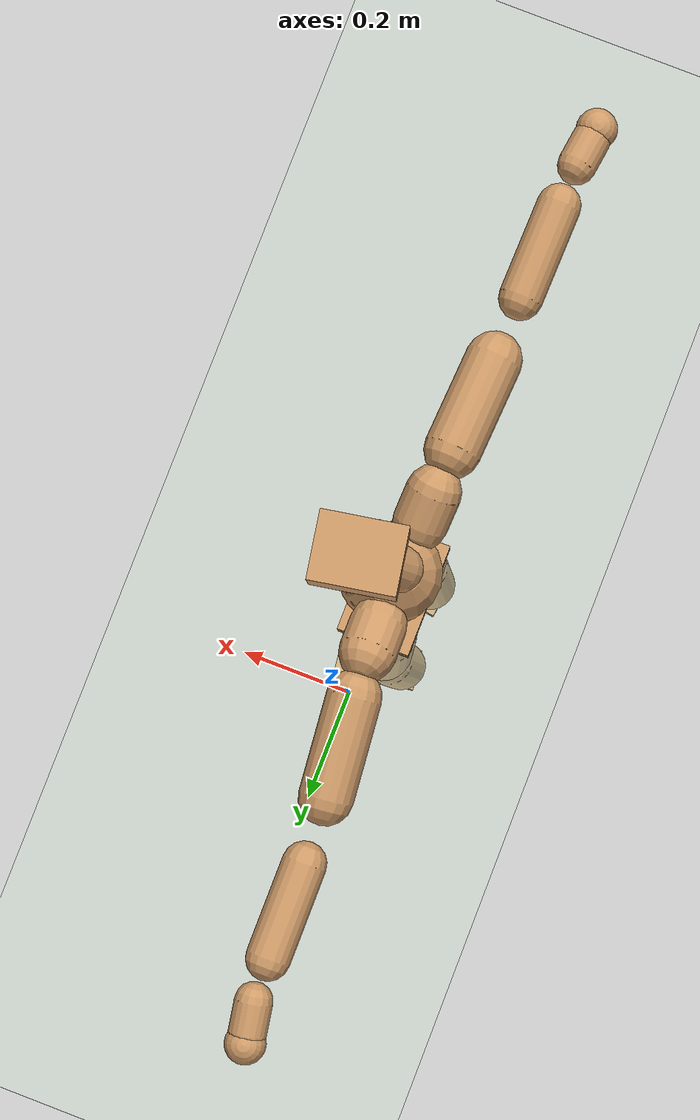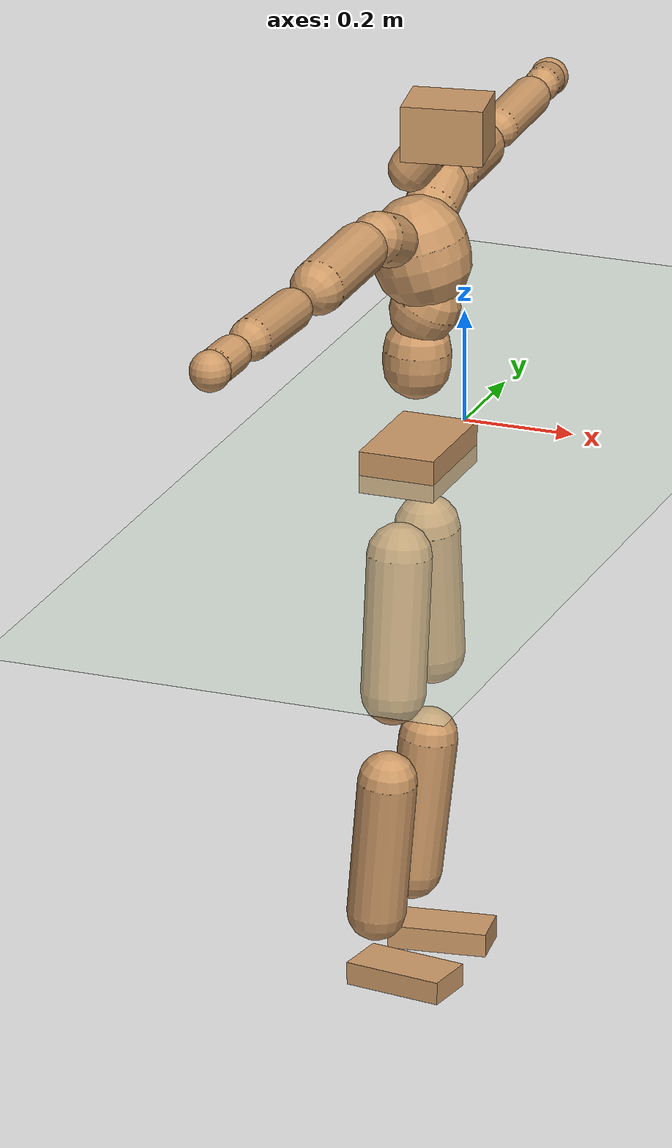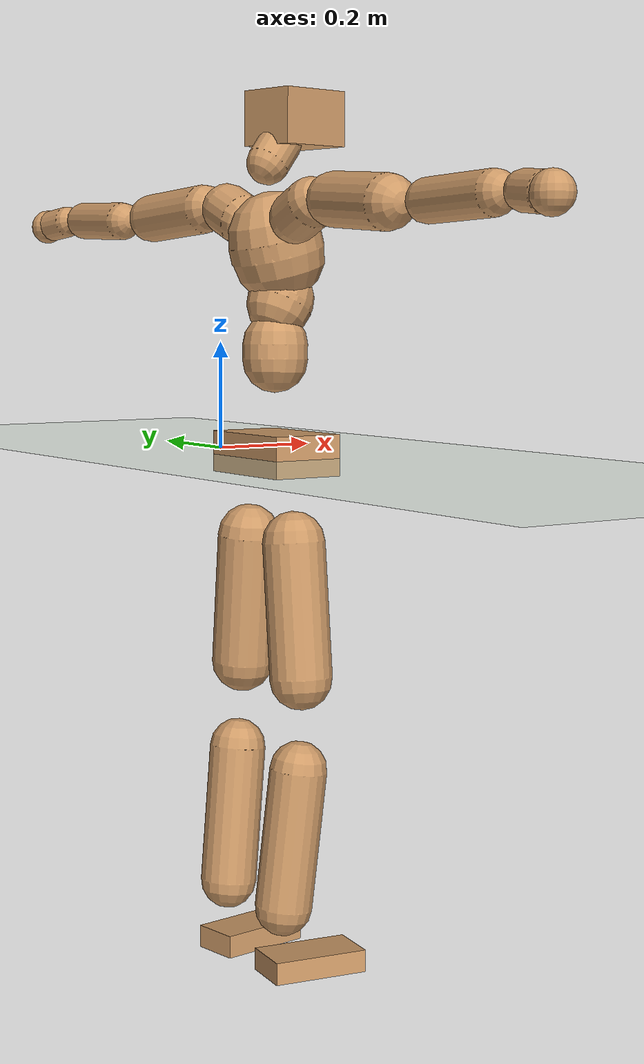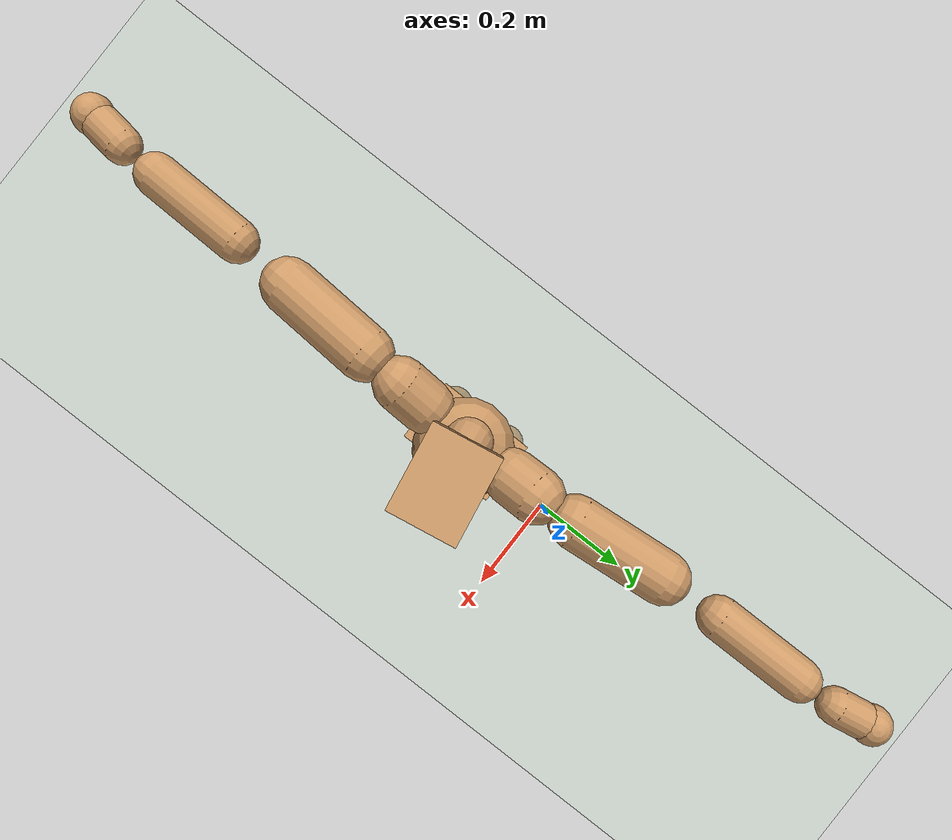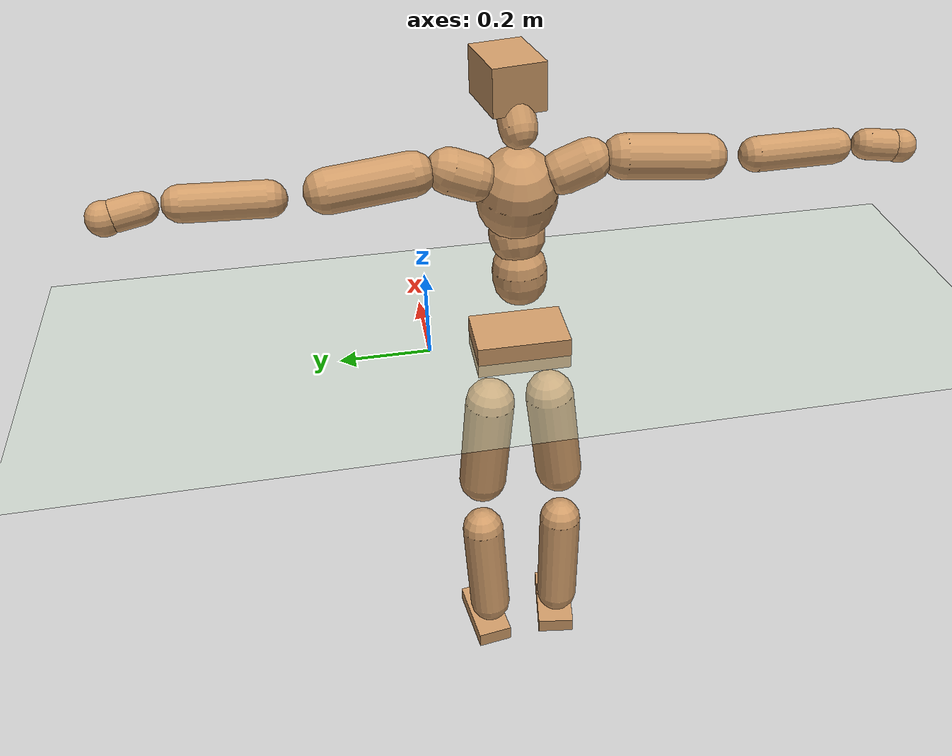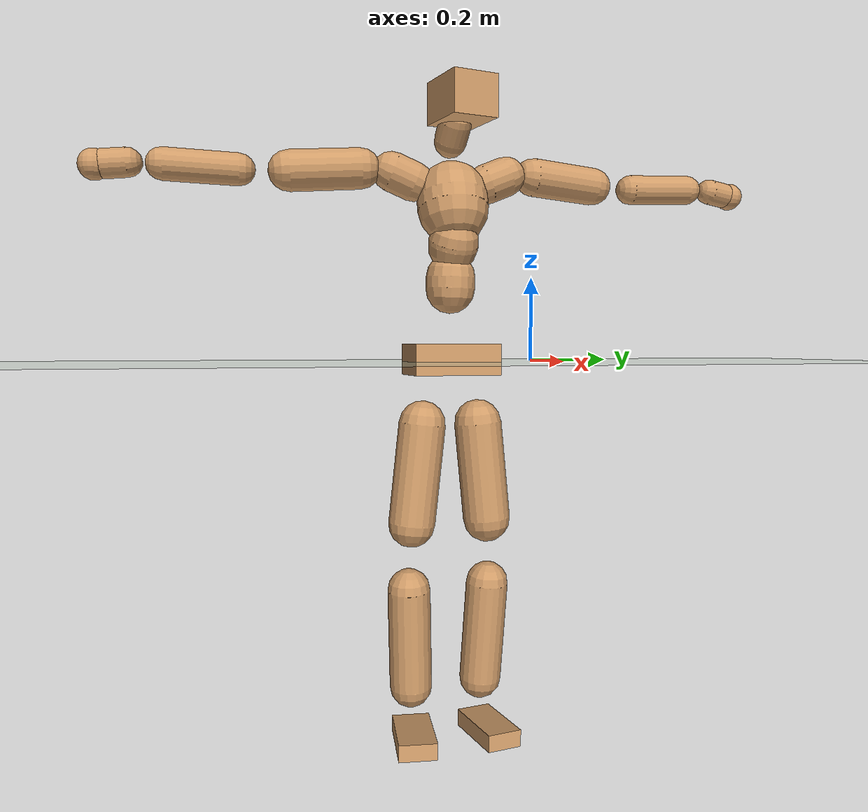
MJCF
<mujoco model="humanoid">
  <compiler coordinate="local" angle="radian"/>
  <default>
    <joint damping="0.0" armature="0.01" stiffness="0.0" limited="true"/>
    <geom conaffinity="1" condim="3" contype="7" margin="0.001" rgba="0.8 0.6 .4 1"/>
  </default>
  <asset>
    <texture type="skybox" builtin="gradient" rgb1=".4 .5 .6" rgb2="0 0 0" width="100" height="100"/>
    <texture builtin="flat" height="1278" mark="cross" markrgb="1 1 1" name="texgeom" random="0.01" rgb1="0.8 0.6 0.4" rgb2="0.8 0.6 0.4" type="cube" width="127"/>
    <texture builtin="checker" height="100" name="texplane" rgb1="0 0 0" rgb2="0.8 0.8 0.8" type="2d" width="100"/>
    <material name="MatPlane" reflectance="0.5" shininess="1" specular="1" texrepeat="60 60" texture="texplane"/>
    <material name="geom" texture="texgeom" texuniform="true"/>
  </asset>
  <worldbody>
    <light cutoff="100" diffuse="1 1 1" dir="-0 0 -1.3" directional="true" exponent="1" pos="0 0 1.3" specular=".1 .1 .1"/>
    <geom conaffinity="1" condim="3" name="floor" pos="0 0 0" rgba="0.8 0.9 0.8 1" size="100 100 .2" type="plane" material="MatPlane"/>
    <body name="Pelvis" pos="-0.0012 -0.2028 0.0159">
      <freejoint name="Pelvis"/>
      <geom type="box" contype="1" conaffinity="1" density="500" pos="-0.0072 0.0000 -0.0124" size="0.0679 0.1052 0.0374" quat="1.0000 0.0000 0.0000 -0.0010" name="Pelvis"/>
      <body name="L_Hip" pos="-0.0186 0.0645 -0.0892">
        <joint name="L_Hip_x" type="hinge" pos="0 0 0" axis="1 0 0" stiffness="800" damping="80" armature="0.02" range="-180.0000 180.0000"/>
        <joint name="L_Hip_y" type="hinge" pos="0 0 0" axis="0 1 0" stiffness="800" damping="80" armature="0.02" range="-180.0000 180.0000"/>
        <joint name="L_Hip_z" type="hinge" pos="0 0 0" axis="0 0 1" stiffness="800" damping="80" armature="0.02" range="-180.0000 180.0000"/>
        <geom type="capsule" contype="1" conaffinity="1" density="500" fromto="0.0003 0.0078 -0.0797 0.0013 0.0310 -0.3189" size="0.0578" name="L_Hip"/>
        <body name="L_Knee" pos="0.0016 0.0388 -0.3986">
          <joint name="L_Knee_x" type="hinge" pos="0 0 0" axis="1 0 0" stiffness="800" damping="80" armature="0.02" range="-180.0000 180.0000"/>
          <joint name="L_Knee_y" type="hinge" pos="0 0 0" axis="0 1 0" stiffness="800" damping="80" armature="0.02" range="-180.0000 180.0000"/>
          <joint name="L_Knee_z" type="hinge" pos="0 0 0" axis="0 0 1" stiffness="800" damping="80" armature="0.02" range="-180.0000 180.0000"/>
          <geom type="capsule" contype="1" conaffinity="1" density="500" fromto="-0.0087 -0.0029 -0.0847 -0.0349 -0.0117 -0.3388" size="0.052" name="L_Knee"/>
          <body name="L_Ankle" pos="-0.0436 -0.0147 -0.4235">
            <joint name="L_Ankle_x" type="hinge" pos="0 0 0" axis="1 0 0" stiffness="800" damping="80" armature="0.02" range="-180.0000 180.0000"/>
            <joint name="L_Ankle_y" type="hinge" pos="0 0 0" axis="0 1 0" stiffness="800" damping="80" armature="0.02" range="-180.0000 180.0000"/>
            <joint name="L_Ankle_z" type="hinge" pos="0 0 0" axis="0 0 1" stiffness="800" damping="80" armature="0.02" range="-180.0000 180.0000"/>
            <geom type="box" contype="1" conaffinity="1" density="500" pos="0.0619 0.0084 -0.0291" size="0.0882 0.0439 0.021" quat="0.9977 0.0000 0.0000 0.0673" name="L_Ankle"/>
            <body name="L_Toe" pos="0.1239 0.0168 -0.0582">
              <joint name="L_Toe_x" type="hinge" pos="0 0 0" axis="1 0 0" stiffness="500" damping="50" armature="0.02" range="-180.0000 180.0000"/>
              <joint name="L_Toe_y" type="hinge" pos="0 0 0" axis="0 1 0" stiffness="500" damping="50" armature="0.02" range="-180.0000 180.0000"/>
              <joint name="L_Toe_z" type="hinge" pos="0 0 0" axis="0 0 1" stiffness="500" damping="50" armature="0.02" range="-180.0000 180.0000"/>
              <geom type="box" contype="1" conaffinity="1" density="500" pos="0.0000 0.0000 0.0282" size="0.0009 0.0022 0.001" quat="0.9973 0.0000 0.0000 0.0740" name="L_Toe"/>
            </body>
          </body>
        </body>
      </body>
      <body name="R_Hip" pos="-0.014 -0.0617 -0.0876">
        <joint name="R_Hip_x" type="hinge" pos="0 0 0" axis="1 0 0" stiffness="800" damping="80" armature="0.02" range="-180.0000 180.0000"/>
        <joint name="R_Hip_y" type="hinge" pos="0 0 0" axis="0 1 0" stiffness="800" damping="80" armature="0.02" range="-180.0000 180.0000"/>
        <joint name="R_Hip_z" type="hinge" pos="0 0 0" axis="0 0 1" stiffness="800" damping="80" armature="0.02" range="-180.0000 180.0000"/>
        <geom type="capsule" contype="1" conaffinity="1" density="500" fromto="-0.0004 -0.0088 -0.0810 -0.0017 -0.0352 -0.3241" size="0.057" name="R_Hip"/>
        <body name="R_Knee" pos="-0.0021 -0.044 -0.4051">
          <joint name="R_Knee_x" type="hinge" pos="0 0 0" axis="1 0 0" stiffness="800" damping="80" armature="0.02" range="-180.0000 180.0000"/>
          <joint name="R_Knee_y" type="hinge" pos="0 0 0" axis="0 1 0" stiffness="800" damping="80" armature="0.02" range="-180.0000 180.0000"/>
          <joint name="R_Knee_z" type="hinge" pos="0 0 0" axis="0 0 1" stiffness="800" damping="80" armature="0.02" range="-180.0000 180.0000"/>
          <geom type="capsule" contype="1" conaffinity="1" density="500" fromto="-0.0082 0.0035 -0.0843 -0.0328 0.0139 -0.3371" size="0.0523" name="R_Knee"/>
          <body name="R_Ankle" pos="-0.041 0.0174 -0.4214">
            <joint name="R_Ankle_x" type="hinge" pos="0 0 0" axis="1 0 0" stiffness="800" damping="80" armature="0.02" range="-180.0000 180.0000"/>
            <joint name="R_Ankle_y" type="hinge" pos="0 0 0" axis="0 1 0" stiffness="800" damping="80" armature="0.02" range="-180.0000 180.0000"/>
            <joint name="R_Ankle_z" type="hinge" pos="0 0 0" axis="0 0 1" stiffness="800" damping="80" armature="0.02" range="-180.0000 180.0000"/>
            <geom type="box" contype="1" conaffinity="1" density="500" pos="0.0635 -0.0094 -0.0247" size="0.0897 0.0467 0.0205" quat="0.9973 0.0000 0.0000 -0.0731" name="R_Ankle"/>
            <body name="R_Toe" pos="0.1271 -0.0187 -0.0494">
              <joint name="R_Toe_x" type="hinge" pos="0 0 0" axis="1 0 0" stiffness="500" damping="50" armature="0.02" range="-180.0000 180.0000"/>
              <joint name="R_Toe_y" type="hinge" pos="0 0 0" axis="0 1 0" stiffness="500" damping="50" armature="0.02" range="-180.0000 180.0000"/>
              <joint name="R_Toe_z" type="hinge" pos="0 0 0" axis="0 0 1" stiffness="500" damping="50" armature="0.02" range="-180.0000 180.0000"/>
              <geom type="box" contype="1" conaffinity="1" density="500" pos="0.0000 0.0000 0.0267" size="0.0009 0.0023 0.0011" quat="0.9979 0.0000 0.0000 -0.0644" name="R_Toe"/>
            </body>
          </body>
        </body>
      </body>
      <body name="Torso" pos="-0.0107 -0.0027 0.1024">
        <joint name="Torso_x" type="hinge" pos="0 0 0" axis="1 0 0" stiffness="1000" damping="100" armature="0.02" range="-180.0000 180.0000"/>
        <joint name="Torso_y" type="hinge" pos="0 0 0" axis="0 1 0" stiffness="1000" damping="100" armature="0.02" range="-180.0000 180.0000"/>
        <joint name="Torso_z" type="hinge" pos="0 0 0" axis="0 0 1" stiffness="1000" damping="100" armature="0.02" range="-180.0000 180.0000"/>
        <geom type="capsule" contype="1" conaffinity="1" density="500" fromto="0.0019 0.0021 0.0806 0.0013 0.0014 0.0537" size="0.0591" name="Torso"/>
        <body name="Spine" pos="0.0032 0.0035 0.1344">
          <joint name="Spine_x" type="hinge" pos="0 0 0" axis="1 0 0" stiffness="1000" damping="100" armature="0.02" range="-180.0000 180.0000"/>
          <joint name="Spine_y" type="hinge" pos="0 0 0" axis="0 1 0" stiffness="1000" damping="100" armature="0.02" range="-180.0000 180.0000"/>
          <joint name="Spine_z" type="hinge" pos="0 0 0" axis="0 0 1" stiffness="1000" damping="100" armature="0.02" range="-180.0000 180.0000"/>
          <geom type="capsule" contype="1" conaffinity="1" density="500" fromto="0.0140 0.0017 0.0287 0.0093 0.0011 0.0191" size="0.0598" name="Spine"/>
          <body name="Chest" pos="0.0233 0.0028 0.0478">
            <joint name="Chest_x" type="hinge" pos="0 0 0" axis="1 0 0" stiffness="1000" damping="100" armature="0.02" range="-180.0000 180.0000"/>
            <joint name="Chest_y" type="hinge" pos="0 0 0" axis="0 1 0" stiffness="1000" damping="100" armature="0.02" range="-180.0000 180.0000"/>
            <joint name="Chest_z" type="hinge" pos="0 0 0" axis="0 0 1" stiffness="1000" damping="100" armature="0.02" range="-180.0000 180.0000"/>
            <geom type="capsule" contype="1" conaffinity="1" density="500" fromto="-0.0242 -0.0008 0.0878 -0.0161 -0.0005 0.0585" size="0.0847" name="Chest"/>
            <body name="Neck" pos="-0.0476 -0.0024 0.2084">
              <joint name="Neck_x" type="hinge" pos="0 0 0" axis="1 0 0" stiffness="500" damping="50" armature="0.02" range="-180.0000 180.0000"/>
              <joint name="Neck_y" type="hinge" pos="0 0 0" axis="0 1 0" stiffness="500" damping="50" armature="0.02" range="-180.0000 180.0000"/>
              <joint name="Neck_z" type="hinge" pos="0 0 0" axis="0 0 1" stiffness="500" damping="50" armature="0.02" range="-180.0000 180.0000"/>
              <geom type="capsule" contype="1" conaffinity="1" density="500" fromto="0.0095 0.0013 0.0122 0.0382 0.0053 0.0488" size="0.039" name="Neck"/>
              <body name="Head" pos="0.0477 0.0066 0.0611">
                <joint name="Head_x" type="hinge" pos="0 0 0" axis="1 0 0" stiffness="500" damping="50" armature="0.02" range="-180.0000 180.0000"/>
                <joint name="Head_y" type="hinge" pos="0 0 0" axis="0 1 0" stiffness="500" damping="50" armature="0.02" range="-180.0000 180.0000"/>
                <joint name="Head_z" type="hinge" pos="0 0 0" axis="0 0 1" stiffness="500" damping="50" armature="0.02" range="-180.0000 180.0000"/>
                <geom type="box" contype="1" conaffinity="1" density="500" pos="0.0249 0.0043 0.0315" size="0.0705 0.0559 0.049" quat="0.9964 0.0000 0.0000 0.0853" name="Head"/>
              </body>
            </body>
            <body name="L_Thorax" pos="-0.0348 0.0707 0.1164">
              <joint name="L_Thorax_x" type="hinge" pos="0 0 0" axis="1 0 0" stiffness="500" damping="50" armature="0.02" range="-180.0000 180.0000"/>
              <joint name="L_Thorax_y" type="hinge" pos="0 0 0" axis="0 1 0" stiffness="500" damping="50" armature="0.02" range="-180.0000 180.0000"/>
              <joint name="L_Thorax_z" type="hinge" pos="0 0 0" axis="0 0 1" stiffness="500" damping="50" armature="0.02" range="-180.0000 180.0000"/>
              <geom type="capsule" contype="1" conaffinity="1" density="500" fromto="-0.0004 0.0170 0.0071 -0.0014 0.0678 0.0283" size="0.0473" name="L_Thorax"/>
              <body name="L_Shoulder" pos="-0.0018 0.0848 0.0354">
                <joint name="L_Shoulder_x" type="hinge" pos="0 0 0" axis="1 0 0" stiffness="500" damping="50" armature="0.02" range="-720.0000 720.0000"/>
                <joint name="L_Shoulder_y" type="hinge" pos="0 0 0" axis="0 1 0" stiffness="500" damping="50" armature="0.02" range="-720.0000 720.0000"/>
                <joint name="L_Shoulder_z" type="hinge" pos="0 0 0" axis="0 0 1" stiffness="500" damping="50" armature="0.02" range="-720.0000 720.0000"/>
                <geom type="capsule" contype="1" conaffinity="1" density="500" fromto="-0.0053 0.0561 -0.0040 -0.0211 0.2243 -0.0159" size="0.0453" name="L_Shoulder"/>
                <body name="L_Elbow" pos="-0.0263 0.2804 -0.0199">
                  <joint name="L_Elbow_x" type="hinge" pos="0 0 0" axis="1 0 0" stiffness="500" damping="50" armature="0.02" range="-720.0000 720.0000"/>
                  <joint name="L_Elbow_y" type="hinge" pos="0 0 0" axis="0 1 0" stiffness="500" damping="50" armature="0.02" range="-720.0000 720.0000"/>
                  <joint name="L_Elbow_z" type="hinge" pos="0 0 0" axis="0 0 1" stiffness="500" damping="50" armature="0.02" range="-720.0000 720.0000"/>
                  <geom type="capsule" contype="1" conaffinity="1" density="500" fromto="-0.0002 0.0536 0.0021 -0.0007 0.2145 0.0085" size="0.0366" name="L_Elbow"/>
                  <body name="L_Wrist" pos="-0.0008 0.2681 0.0107">
                    <joint name="L_Wrist_x" type="hinge" pos="0 0 0" axis="1 0 0" stiffness="300" damping="30" armature="0.02" range="-180.0000 180.0000"/>
                    <joint name="L_Wrist_y" type="hinge" pos="0 0 0" axis="0 1 0" stiffness="300" damping="30" armature="0.02" range="-180.0000 180.0000"/>
                    <joint name="L_Wrist_z" type="hinge" pos="0 0 0" axis="0 0 1" stiffness="300" damping="30" armature="0.02" range="-180.0000 180.0000"/>
                    <geom type="capsule" contype="1" conaffinity="1" density="500" fromto="-0.0029 0.0171 -0.0021 -0.0116 0.0684 -0.0085" size="0.0314" name="L_Wrist"/>
                    <body name="L_Hand" pos="-0.0145 0.0855 -0.0107">
                      <joint name="L_Hand_x" type="hinge" pos="0 0 0" axis="1 0 0" stiffness="300" damping="30" armature="0.02" range="-180.0000 180.0000"/>
                      <joint name="L_Hand_y" type="hinge" pos="0 0 0" axis="0 1 0" stiffness="300" damping="30" armature="0.02" range="-180.0000 180.0000"/>
                      <joint name="L_Hand_z" type="hinge" pos="0 0 0" axis="0 0 1" stiffness="300" damping="30" armature="0.02" range="-180.0000 180.0000"/>
                      <geom type="sphere" contype="1" conaffinity="1" density="500" size="0.0341" pos="0.0000 0.0000 0.0000" name="L_Hand"/>
                    </body>
                  </body>
                </body>
              </body>
            </body>
            <body name="R_Thorax" pos="-0.0385 -0.0722 0.1142">
              <joint name="R_Thorax_x" type="hinge" pos="0 0 0" axis="1 0 0" stiffness="500" damping="50" armature="0.02" range="-180.0000 180.0000"/>
              <joint name="R_Thorax_y" type="hinge" pos="0 0 0" axis="0 1 0" stiffness="500" damping="50" armature="0.02" range="-180.0000 180.0000"/>
              <joint name="R_Thorax_z" type="hinge" pos="0 0 0" axis="0 0 1" stiffness="500" damping="50" armature="0.02" range="-180.0000 180.0000"/>
              <geom type="capsule" contype="1" conaffinity="1" density="500" fromto="-0.0010 -0.0180 0.0074 -0.0040 -0.0718 0.0294" size="0.0462" name="R_Thorax"/>
              <body name="R_Shoulder" pos="-0.005 -0.0898 0.0368">
                <joint name="R_Shoulder_x" type="hinge" pos="0 0 0" axis="1 0 0" stiffness="500" damping="50" armature="0.02" range="-720.0000 720.0000"/>
                <joint name="R_Shoulder_y" type="hinge" pos="0 0 0" axis="0 1 0" stiffness="500" damping="50" armature="0.02" range="-720.0000 720.0000"/>
                <joint name="R_Shoulder_z" type="hinge" pos="0 0 0" axis="0 0 1" stiffness="500" damping="50" armature="0.02" range="-720.0000 720.0000"/>
                <geom type="capsule" contype="1" conaffinity="1" density="500" fromto="-0.0032 -0.0551 -0.0039 -0.0127 -0.2206 -0.0157" size="0.0473" name="R_Shoulder"/>
                <body name="R_Elbow" pos="-0.0159 -0.2757 -0.0196">
                  <joint name="R_Elbow_x" type="hinge" pos="0 0 0" axis="1 0 0" stiffness="500" damping="50" armature="0.02" range="-720.0000 720.0000"/>
                  <joint name="R_Elbow_y" type="hinge" pos="0 0 0" axis="0 1 0" stiffness="500" damping="50" armature="0.02" range="-720.0000 720.0000"/>
                  <joint name="R_Elbow_z" type="hinge" pos="0 0 0" axis="0 0 1" stiffness="500" damping="50" armature="0.02" range="-720.0000 720.0000"/>
                  <geom type="capsule" contype="1" conaffinity="1" density="500" fromto="-0.0014 -0.0554 0.0014 -0.0056 -0.2214 0.0058" size="0.0367" name="R_Elbow"/>
                  <body name="R_Wrist" pos="-0.0069 -0.2768 0.0072">
                    <joint name="R_Wrist_x" type="hinge" pos="0 0 0" axis="1 0 0" stiffness="300" damping="30" armature="0.02" range="-180.0000 180.0000"/>
                    <joint name="R_Wrist_y" type="hinge" pos="0 0 0" axis="0 1 0" stiffness="300" damping="30" armature="0.02" range="-180.0000 180.0000"/>
                    <joint name="R_Wrist_z" type="hinge" pos="0 0 0" axis="0 0 1" stiffness="300" damping="30" armature="0.02" range="-180.0000 180.0000"/>
                    <geom type="capsule" contype="1" conaffinity="1" density="500" fromto="-0.0023 -0.0175 -0.0016 -0.0092 -0.0701 -0.0064" size="0.0324" name="R_Wrist"/>
                    <body name="R_Hand" pos="-0.0115 -0.0877 -0.008">
                      <joint name="R_Hand_x" type="hinge" pos="0 0 0" axis="1 0 0" stiffness="300" damping="30" armature="0.02" range="-180.0000 180.0000"/>
                      <joint name="R_Hand_y" type="hinge" pos="0 0 0" axis="0 1 0" stiffness="300" damping="30" armature="0.02" range="-180.0000 180.0000"/>
                      <joint name="R_Hand_z" type="hinge" pos="0 0 0" axis="0 0 1" stiffness="300" damping="30" armature="0.02" range="-180.0000 180.0000"/>
                      <geom type="sphere" contype="1" conaffinity="1" density="500" size="0.0347" pos="0.0000 0.0000 0.0000" name="R_Hand"/>
                    </body>
                  </body>
                </body>
              </body>
            </body>
          </body>
        </body>
      </body>
    </body>
  </worldbody>
  <actuator>
    <motor name="L_Hip_x" joint="L_Hip_x" gear="500"/>
    <motor name="L_Hip_y" joint="L_Hip_y" gear="500"/>
    <motor name="L_Hip_z" joint="L_Hip_z" gear="500"/>
    <motor name="L_Knee_x" joint="L_Knee_x" gear="500"/>
    <motor name="L_Knee_y" joint="L_Knee_y" gear="500"/>
    <motor name="L_Knee_z" joint="L_Knee_z" gear="500"/>
    <motor name="L_Ankle_x" joint="L_Ankle_x" gear="500"/>
    <motor name="L_Ankle_y" joint="L_Ankle_y" gear="500"/>
    <motor name="L_Ankle_z" joint="L_Ankle_z" gear="500"/>
    <motor name="L_Toe_x" joint="L_Toe_x" gear="500"/>
    <motor name="L_Toe_y" joint="L_Toe_y" gear="500"/>
    <motor name="L_Toe_z" joint="L_Toe_z" gear="500"/>
    <motor name="R_Hip_x" joint="R_Hip_x" gear="500"/>
    <motor name="R_Hip_y" joint="R_Hip_y" gear="500"/>
    <motor name="R_Hip_z" joint="R_Hip_z" gear="500"/>
    <motor name="R_Knee_x" joint="R_Knee_x" gear="500"/>
    <motor name="R_Knee_y" joint="R_Knee_y" gear="500"/>
    <motor name="R_Knee_z" joint="R_Knee_z" gear="500"/>
    <motor name="R_Ankle_x" joint="R_Ankle_x" gear="500"/>
    <motor name="R_Ankle_y" joint="R_Ankle_y" gear="500"/>
    <motor name="R_Ankle_z" joint="R_Ankle_z" gear="500"/>
    <motor name="R_Toe_x" joint="R_Toe_x" gear="500"/>
    <motor name="R_Toe_y" joint="R_Toe_y" gear="500"/>
    <motor name="R_Toe_z" joint="R_Toe_z" gear="500"/>
    <motor name="Torso_x" joint="Torso_x" gear="500"/>
    <motor name="Torso_y" joint="Torso_y" gear="500"/>
    <motor name="Torso_z" joint="Torso_z" gear="500"/>
    <motor name="Spine_x" joint="Spine_x" gear="500"/>
    <motor name="Spine_y" joint="Spine_y" gear="500"/>
    <motor name="Spine_z" joint="Spine_z" gear="500"/>
    <motor name="Chest_x" joint="Chest_x" gear="500"/>
    <motor name="Chest_y" joint="Chest_y" gear="500"/>
    <motor name="Chest_z" joint="Chest_z" gear="500"/>
    <motor name="Neck_x" joint="Neck_x" gear="500"/>
    <motor name="Neck_y" joint="Neck_y" gear="500"/>
    <motor name="Neck_z" joint="Neck_z" gear="500"/>
    <motor name="Head_x" joint="Head_x" gear="500"/>
    <motor name="Head_y" joint="Head_y" gear="500"/>
    <motor name="Head_z" joint="Head_z" gear="500"/>
    <motor name="L_Thorax_x" joint="L_Thorax_x" gear="500"/>
    <motor name="L_Thorax_y" joint="L_Thorax_y" gear="500"/>
    <motor name="L_Thorax_z" joint="L_Thorax_z" gear="500"/>
    <motor name="L_Shoulder_x" joint="L_Shoulder_x" gear="500"/>
    <motor name="L_Shoulder_y" joint="L_Shoulder_y" gear="500"/>
    <motor name="L_Shoulder_z" joint="L_Shoulder_z" gear="500"/>
    <motor name="L_Elbow_x" joint="L_Elbow_x" gear="500"/>
    <motor name="L_Elbow_y" joint="L_Elbow_y" gear="500"/>
    <motor name="L_Elbow_z" joint="L_Elbow_z" gear="500"/>
    <motor name="L_Wrist_x" joint="L_Wrist_x" gear="500"/>
    <motor name="L_Wrist_y" joint="L_Wrist_y" gear="500"/>
    <motor name="L_Wrist_z" joint="L_Wrist_z" gear="500"/>
    <motor name="L_Hand_x" joint="L_Hand_x" gear="500"/>
    <motor name="L_Hand_y" joint="L_Hand_y" gear="500"/>
    <motor name="L_Hand_z" joint="L_Hand_z" gear="500"/>
    <motor name="R_Thorax_x" joint="R_Thorax_x" gear="500"/>
    <motor name="R_Thorax_y" joint="R_Thorax_y" gear="500"/>
    <motor name="R_Thorax_z" joint="R_Thorax_z" gear="500"/>
    <motor name="R_Shoulder_x" joint="R_Shoulder_x" gear="500"/>
    <motor name="R_Shoulder_y" joint="R_Shoulder_y" gear="500"/>
    <motor name="R_Shoulder_z" joint="R_Shoulder_z" gear="500"/>
    <motor name="R_Elbow_x" joint="R_Elbow_x" gear="500"/>
    <motor name="R_Elbow_y" joint="R_Elbow_y" gear="500"/>
    <motor name="R_Elbow_z" joint="R_Elbow_z" gear="500"/>
    <motor name="R_Wrist_x" joint="R_Wrist_x" gear="500"/>
    <motor name="R_Wrist_y" joint="R_Wrist_y" gear="500"/>
    <motor name="R_Wrist_z" joint="R_Wrist_z" gear="500"/>
    <motor name="R_Hand_x" joint="R_Hand_x" gear="500"/>
    <motor name="R_Hand_y" joint="R_Hand_y" gear="500"/>
    <motor name="R_Hand_z" joint="R_Hand_z" gear="500"/>
  </actuator>
  <contact>
    <exclude body1="Torso" body2="Chest"/>
    <exclude body1="Head" body2="Chest"/>
    <exclude body1="R_Knee" body2="R_Toe"/>
    <exclude body1="R_Knee" body2="L_Ankle"/>
    <exclude body1="R_Knee" body2="L_Toe"/>
    <exclude body1="L_Knee" body2="L_Toe"/>
    <exclude body1="L_Knee" body2="R_Ankle"/>
    <exclude body1="L_Knee" body2="R_Toe"/>
    <exclude body1="L_Shoulder" body2="Chest"/>
    <exclude body1="R_Shoulder" body2="Chest"/>
  </contact>
  <sensor/>
  <size njmax="700" nconmax="700"/>
</mujoco>
